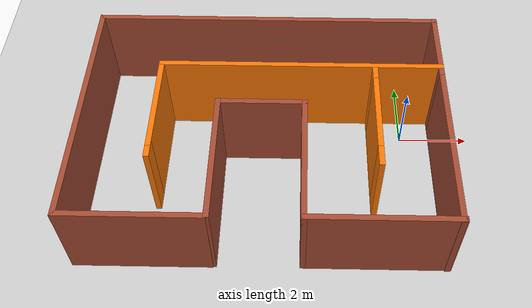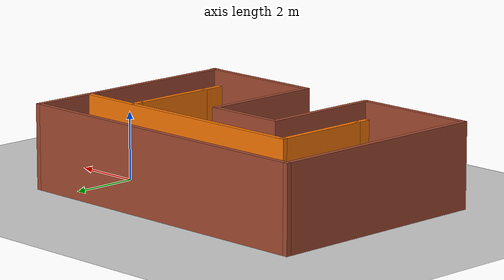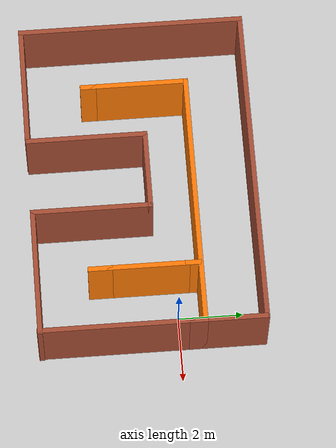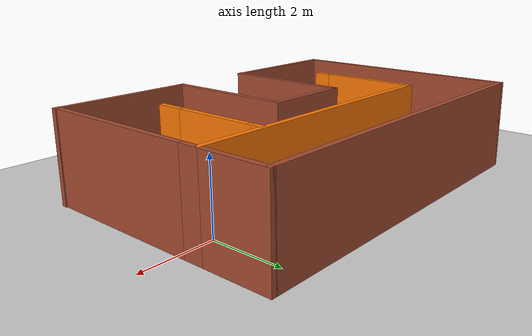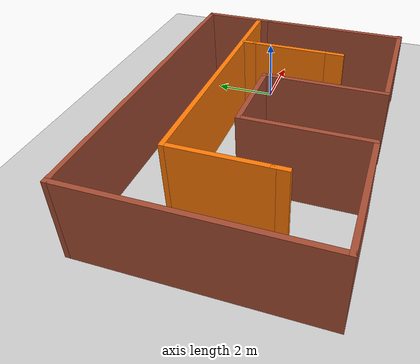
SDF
<sdf version="1.6">
 <world name="default">
  <light name="sun" type="directional">
   <pose>0 0 10 0 -0 0</pose>
   <diffuse>0.8 0.8 0.8 1</diffuse>
   <specular>0.2 0.2 0.2 1</specular>
   <attenuation>
    <range>1000</range>
    <constant>0.9</constant>
    <linear>0.01</linear>
    <quadratic>0.001</quadratic>
   </attenuation>
   <direction>-0.5 0.1 -0.9</direction>
   <spot><inner_angle>0</inner_angle><outer_angle>0</outer_angle><falloff>0</falloff></spot>
  </light>
  <model name="ground_plane">
   <static>1</static>
   <link name="link">
    <collision name="collision">
     <geometry><plane><normal>0 0 1</normal><size>100 100</size></plane></geometry>
     <surface><friction><ode><mu>100</mu><mu2>50</mu2></ode></friction></surface>
    </collision>
    <visual name="visual">
     <cast_shadows>0</cast_shadows>
     <geometry><plane><normal>0 0 1</normal><size>100 100</size></plane></geometry>
     <material>
      <script><uri>file://media/materials/scripts/gazebo.material</uri><name>Gazebo/Grey</name></script>
     </material>
    </visual>
   </link>
  </model>
  <gravity>0 0 -9.8</gravity>
  <magnetic_field>6e-06 2.3e-05 -4.2e-05</magnetic_field>
  <atmosphere type="adiabatic"/>
  <physics name="default_physics" default="0" type="ode">
   <max_step_size>0.001</max_step_size>
   <real_time_factor>1</real_time_factor>
   <real_time_update_rate>1000</real_time_update_rate>
  </physics>
  <scene><ambient>0.4 0.4 0.4 1</ambient><background>0.7 0.7 0.7 1</background><shadows>1</shadows></scene>
  <spherical_coordinates>
   <surface_model>EARTH_WGS84</surface_model>
   <latitude_deg>0</latitude_deg>
   <longitude_deg>0</longitude_deg>
   <elevation>0</elevation>
   <heading_deg>0</heading_deg>
  </spherical_coordinates>
  <model name="turtle_world.world">
   <pose>-3.97166 -0.678188 0 0 -0 0</pose>
   <link name="Wall_11">
    <collision name="Wall_11_Collision">
     <geometry><box><size>4.75 0.15 2.5</size></box></geometry>
     <pose>0 0 1.25 0 -0 0</pose>
    </collision>
    <visual name="Wall_11_Visual">
     <pose>0 0 1.25 0 -0 0</pose>
     <geometry><box><size>4.75 0.15 2.5</size></box></geometry>
     <material>
      <script><uri>file://media/materials/scripts/gazebo.material</uri><name>Gazebo/Bricks</name></script>
      <ambient>1 1 1 1</ambient>
     </material>
     <meta><layer>0</layer></meta>
    </visual>
    <pose>4.90843 -1.3025 0 0 -0 1.5708</pose>
   </link>
   <link name="Wall_13">
    <collision name="Wall_13_Collision">
     <geometry><box><size>2.5 0.15 2.5</size></box></geometry>
     <pose>0 0 1.25 0 -0 0</pose>
    </collision>
    <visual name="Wall_13_Visual">
     <pose>0 0 1.25 0 -0 0</pose>
     <geometry><box><size>2.5 0.15 2.5</size></box></geometry>
     <material>
      <script><uri>file://media/materials/scripts/gazebo.material</uri><name>Gazebo/Grey</name></script>
      <ambient>0.996078 0.47451 0.0196078 1</ambient>
     </material>
     <meta><layer>0</layer></meta>
    </visual>
    <pose>3.05843 -0.1775 0 0 -0 -1.5708</pose>
   </link>
   <link name="Wall_17">
    <collision name="Wall_17_Collision">
     <geometry><box><size>0.5 0.15 2.5</size></box></geometry>
     <pose>0 0 1.25 0 -0 0</pose>
    </collision>
    <visual name="Wall_17_Visual">
     <pose>0 0 1.25 0 -0 0</pose>
     <geometry><box><size>0.5 0.15 2.5</size></box></geometry>
     <material>
      <script><uri>file://media/materials/scripts/gazebo.material</uri><name>Gazebo/Grey</name></script>
      <ambient>0.996078 0.47451 0.0196078 1</ambient>
     </material>
     <meta><layer>0</layer></meta>
    </visual>
    <pose>-2.94157 -1.6275 0 0 -0 -1.5708</pose>
   </link>
   <link name="Wall_19">
    <collision name="Wall_19_Collision">
     <geometry><box><size>3.75 0.15 2.5</size></box></geometry>
     <pose>0 0 1.25 0 -0 0</pose>
    </collision>
    <visual name="Wall_19_Visual">
     <pose>0 0 1.25 0 -0 0</pose>
     <geometry><box><size>3.75 0.15 2.5</size></box></geometry>
     <material>
      <script><uri>file://media/materials/scripts/gazebo.material</uri><name>Gazebo/Bricks</name></script>
      <ambient>1 1 1 1</ambient>
     </material>
     <meta><layer>0</layer></meta>
    </visual>
    <pose>-1.25843 -1.78372 0 0 -0 1.5708</pose>
   </link>
   <link name="Wall_20">
    <collision name="Wall_20_Collision">
     <geometry><box><size>2.5 0.15 2.5</size></box></geometry>
     <pose>0 0 1.25 0 -0 0</pose>
    </collision>
    <visual name="Wall_20_Visual">
     <pose>0 0 1.25 0 -0 0</pose>
     <geometry><box><size>2.5 0.15 2.5</size></box></geometry>
     <material>
      <script><uri>file://media/materials/scripts/gazebo.material</uri><name>Gazebo/Bricks</name></script>
      <ambient>1 1 1 1</ambient>
     </material>
     <meta><layer>0</layer></meta>
    </visual>
    <pose>-0.083426 0.016282 0 0 -0 0</pose>
   </link>
   <link name="Wall_21">
    <collision name="Wall_21_Collision">
     <geometry><box><size>3.75 0.15 2.5</size></box></geometry>
     <pose>0 0 1.25 0 -0 0</pose>
    </collision>
    <visual name="Wall_21_Visual">
     <pose>0 0 1.25 0 -0 0</pose>
     <geometry><box><size>3.75 0.15 2.5</size></box></geometry>
     <material>
      <script><uri>file://media/materials/scripts/gazebo.material</uri><name>Gazebo/Bricks</name></script>
      <ambient>1 1 1 1</ambient>
     </material>
     <meta><layer>0</layer></meta>
    </visual>
    <pose>1.09157 -1.78372 0 0 -0 -1.5708</pose>
   </link>
   <link name="Wall_25">
    <collision name="Wall_25_Collision">
     <geometry><box><size>0.75 0.15 2.5</size></box></geometry>
     <pose>0 0 1.25 0 -0 0</pose>
    </collision>
    <visual name="Wall_25_Visual">
     <pose>0 0 1.25 0 -0 0</pose>
     <geometry><box><size>0.75 0.15 2.5</size></box></geometry>
     <material>
      <script><uri>file://media/materials/scripts/gazebo.material</uri><name>Gazebo/Grey</name></script>
      <ambient>0.996078 0.47451 0.0196078 1</ambient>
     </material>
     <meta><layer>0</layer></meta>
    </visual>
    <pose>3.05843 -1.6525 0 0 -0 -1.5708</pose>
   </link>
   <link name="Wall_27">
    <collision name="Wall_27_Collision">
     <geometry><box><size>0.5 0.15 2.5</size></box></geometry>
     <pose>0 0 1.25 0 -0 0</pose>
    </collision>
    <visual name="Wall_27_Visual">
     <pose>0 0 1.25 0 -0 0</pose>
     <geometry><box><size>0.5 0.15 2.5</size></box></geometry>
     <material>
      <script><uri>file://media/materials/scripts/gazebo.material</uri><name>Gazebo/Grey</name></script>
      <ambient>0.996078 0.47451 0.0196078 1</ambient>
     </material>
     <meta><layer>0</layer></meta>
    </visual>
    <pose>3.05843 1.1725 0 0 -0 1.5708</pose>
   </link>
   <link name="Wall_3">
    <collision name="Wall_3_Collision">
     <geometry><box><size>10 0.15 2.5</size></box></geometry>
     <pose>0 0 1.25 0 -0 0</pose>
    </collision>
    <visual name="Wall_3_Visual">
     <pose>0 0 1.25 0 -0 0</pose>
     <geometry><box><size>10 0.15 2.5</size></box></geometry>
     <material>
      <script><uri>file://media/materials/scripts/gazebo.material</uri><name>Gazebo/Bricks</name></script>
      <ambient>1 1 1 1</ambient>
     </material>
     <meta><layer>0</layer></meta>
    </visual>
    <pose>-0.016573 3.2475 0 0 -0 0</pose>
   </link>
   <link name="Wall_30">
    <collision name="Wall_30_Collision">
     <geometry><box><size>0.55 0.15 2.5</size></box></geometry>
     <pose>0 0 1.25 0 -0 0</pose>
    </collision>
    <visual name="Wall_30_Visual">
     <pose>0 0 1.25 0 -0 0</pose>
     <geometry><box><size>0.55 0.15 2.5</size></box></geometry>
     <material>
      <script><uri>file://media/materials/scripts/gazebo.material</uri><name>Gazebo/Bricks</name></script>
      <ambient>1 1 1 1</ambient>
     </material>
     <meta><layer>0</layer></meta>
    </visual>
    <pose>4.90843 1.1975 0 0 -0 1.5708</pose>
   </link>
   <link name="Wall_32">
    <collision name="Wall_32_Collision">
     <geometry><box><size>3.75 0.15 2.5</size></box></geometry>
     <pose>0 0 1.25 0 -0 0</pose>
    </collision>
    <visual name="Wall_32_Visual">
     <pose>0 0 1.25 0 -0 0</pose>
     <geometry><box><size>3.75 0.15 2.5</size></box></geometry>
     <material>
      <script><uri>file://media/materials/scripts/gazebo.material</uri><name>Gazebo/Bricks</name></script>
      <ambient>1 1 1 1</ambient>
     </material>
     <meta><layer>0</layer></meta>
    </visual>
    <pose>-3.14157 -3.6025 0 0 -0 0</pose>
   </link>
   <link name="Wall_34">
    <collision name="Wall_34_Collision">
     <geometry><box><size>4 0.15 2.5</size></box></geometry>
     <pose>0 0 1.25 0 -0 0</pose>
    </collision>
    <visual name="Wall_34_Visual">
     <pose>0 0 1.25 0 -0 0</pose>
     <geometry><box><size>4 0.15 2.5</size></box></geometry>
     <material>
      <script><uri>file://media/materials/scripts/gazebo.material</uri><name>Gazebo/Bricks</name></script>
      <ambient>1 1 1 1</ambient>
     </material>
     <meta><layer>0</layer></meta>
    </visual>
    <pose>3.01657 -3.58372 0 0 -0 0</pose>
   </link>
   <link name="Wall_4">
    <collision name="Wall_4_Collision">
     <geometry><box><size>2 0.15 2.5</size></box></geometry>
     <pose>0 0 1.25 0 -0 0</pose>
    </collision>
    <visual name="Wall_4_Visual">
     <pose>0 0 1.25 0 -0 0</pose>
     <geometry><box><size>2 0.15 2.5</size></box></geometry>
     <material>
      <script><uri>file://media/materials/scripts/gazebo.material</uri><name>Gazebo/Bricks</name></script>
      <ambient>1 1 1 1</ambient>
     </material>
     <meta><layer>0</layer></meta>
    </visual>
    <pose>4.90843 2.3225 0 0 -0 -1.5708</pose>
   </link>
   <link name="Wall_5">
    <collision name="Wall_5_Collision">
     <geometry><box><size>8 0.15 2.5</size></box></geometry>
     <pose>0 0 1.25 0 -0 0</pose>
    </collision>
    <visual name="Wall_5_Visual">
     <pose>0 0 1.25 0 -0 0</pose>
     <geometry><box><size>8 0.15 2.5</size></box></geometry>
     <material>
      <script><uri>file://media/materials/scripts/gazebo.material</uri><name>Gazebo/Grey</name></script>
      <ambient>0.996078 0.47451 0.0196078 1</ambient>
     </material>
     <meta><layer>0</layer></meta>
    </visual>
    <pose>0.983427 1.3975 0 0 -0 3.14159</pose>
   </link>
   <link name="Wall_6">
    <collision name="Wall_6_Collision">
     <geometry><box><size>3 0.15 2.5</size></box></geometry>
     <pose>0 0 1.25 0 -0 0</pose>
    </collision>
    <visual name="Wall_6_Visual">
     <pose>0 0 1.25 0 -0 0</pose>
     <geometry><box><size>3 0.15 2.5</size></box></geometry>
     <material>
      <script><uri>file://media/materials/scripts/gazebo.material</uri><name>Gazebo/Grey</name></script>
      <ambient>0.996078 0.47451 0.0196078 1</ambient>
     </material>
     <meta><layer>0</layer></meta>
    </visual>
    <pose>-2.94157 -0.0275 0 0 -0 -1.5708</pose>
   </link>
   <link name="Wall_9">
    <collision name="Wall_9_Collision">
     <geometry><box><size>7 0.15 2.5</size></box></geometry>
     <pose>0 0 1.25 0 -0 0</pose>
    </collision>
    <visual name="Wall_9_Visual">
     <pose>0 0 1.25 0 -0 0</pose>
     <geometry><box><size>7 0.15 2.5</size></box></geometry>
     <material>
      <script><uri>file://media/materials/scripts/gazebo.material</uri><name>Gazebo/Bricks</name></script>
      <ambient>1 1 1 1</ambient>
     </material>
     <meta><layer>0</layer></meta>
    </visual>
    <pose>-4.94157 -0.1775 0 0 -0 -1.5708</pose>
   </link>
   <static>1</static>
  </model>
 </world>
</sdf>
